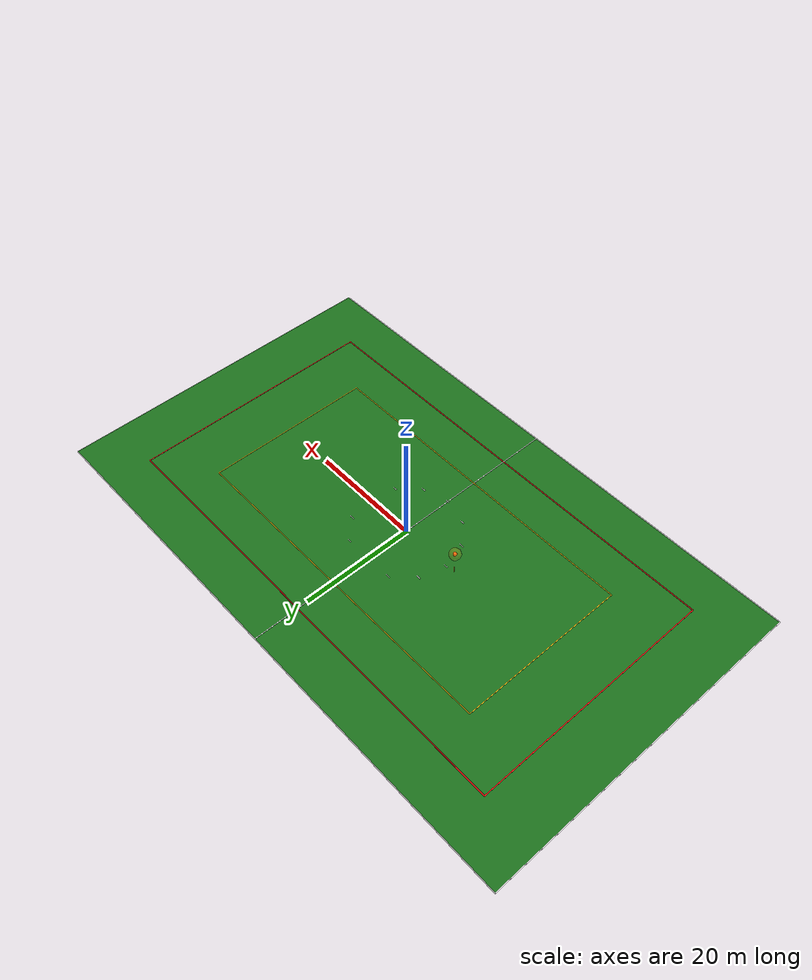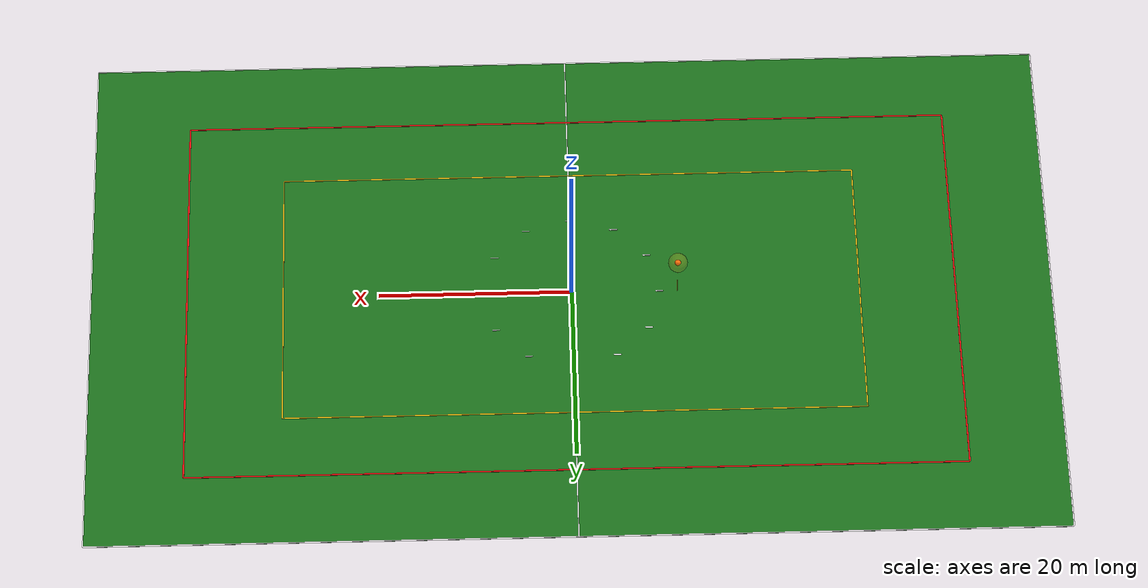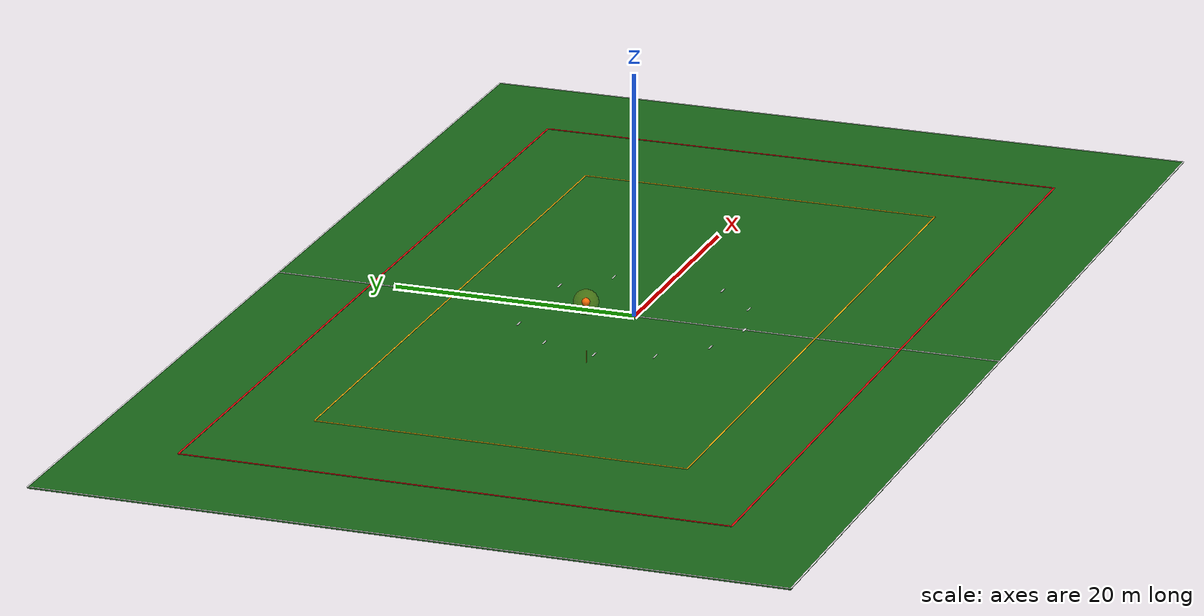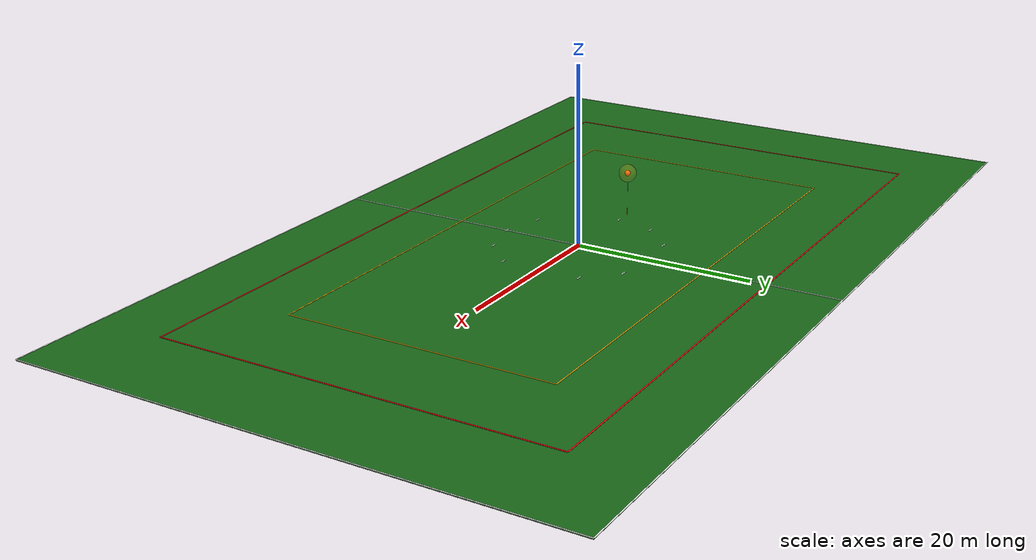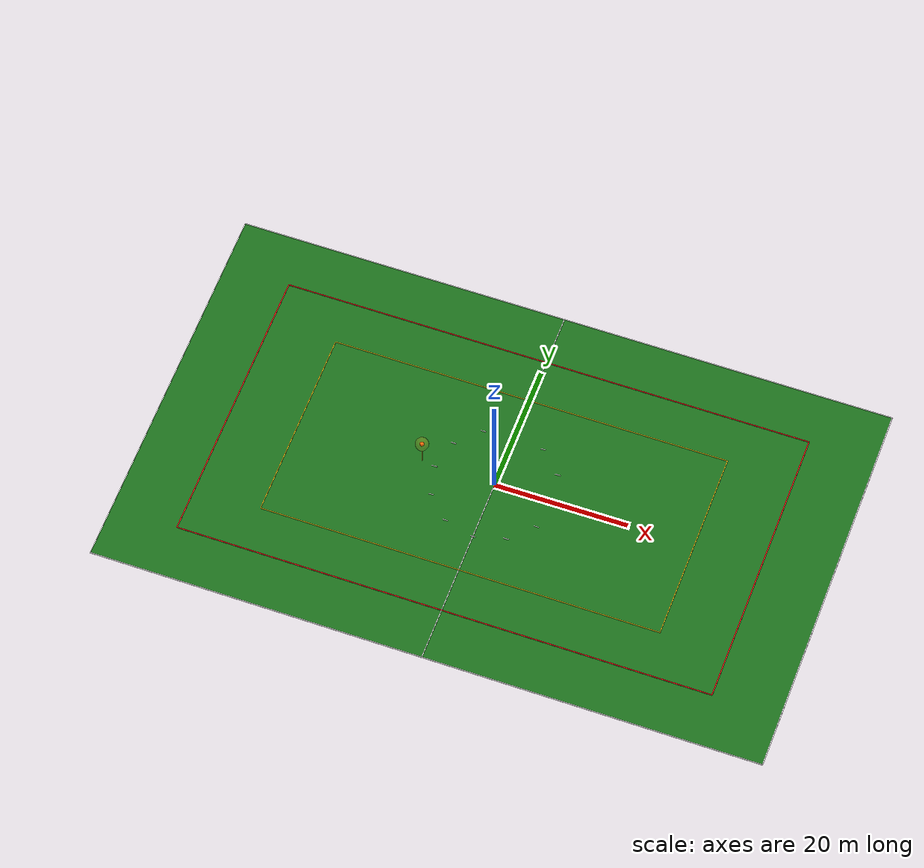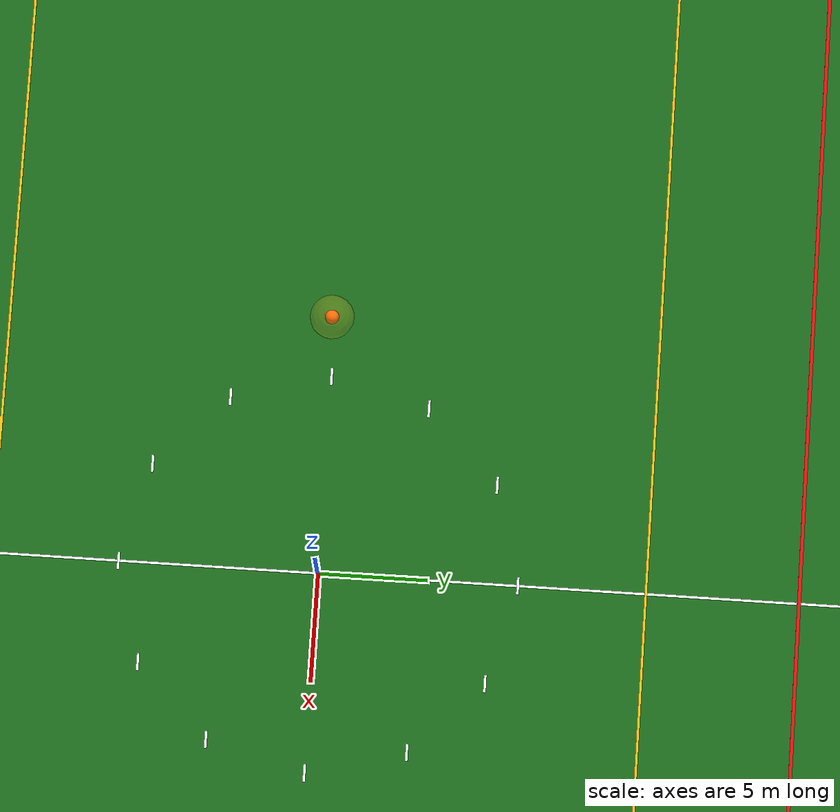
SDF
<?xml version="1.0" encoding="UTF-8"?>
<sdf version="1.9">
  <world name="football_field">
    <physics type="ode"><max_step_size>0.004</max_step_size><real_time_factor>1.0</real_time_factor><real_time_update_rate>250</real_time_update_rate></physics>
    <plugin name="gz::sim::systems::Physics" filename="gz-sim-physics-system"/>
    <plugin name="gz::sim::systems::UserCommands" filename="gz-sim-user-commands-system"/>
    <plugin name="gz::sim::systems::SceneBroadcaster" filename="gz-sim-scene-broadcaster-system"/>
    <plugin name="gz::sim::systems::Contact" filename="gz-sim-contact-system"/>
    <plugin name="gz::sim::systems::Imu" filename="gz-sim-imu-system"/>
    <plugin name="gz::sim::systems::AirPressure" filename="gz-sim-air-pressure-system"/>
    <plugin name="gz::sim::systems::ApplyLinkWrench" filename="gz-sim-apply-link-wrench-system"/>
    <plugin name="gz::sim::systems::NavSat" filename="gz-sim-navsat-system"/>
    <plugin name="gz::sim::systems::Sensors" filename="gz-sim-sensors-system"><render_engine>ogre2</render_engine></plugin>
    <gravity>0 0 -9.8</gravity>
    <magnetic_field>6e-06 2.3e-05 -4.2e-05</magnetic_field>
    <atmosphere type="adiabatic"/>
    <scene><grid>false</grid><ambient>0.5 0.5 0.5 1</ambient><background>0.72 0.82 0.92 1</background><shadows>true</shadows></scene>
    <gui fullscreen="false">
      <plugin filename="MinimalScene" name="3D View"><gz-gui><title>RAS hardware mirror</title><property type="bool" key="showTitleBar">false</property><property type="string" key="state">docked</property></gz-gui><engine>ogre2</engine><scene>scene</scene><ambient_light>0.5 0.5 0.5</ambient_light><background_color>0.72 0.82 0.92</background_color><camera_pose>-55 -48 44 0 0.55 0.7</camera_pose></plugin>
      <plugin name="World control" filename="WorldControl"><gz-gui><property type="bool" key="showTitleBar">0</property><property type="string" key="state">floating</property></gz-gui><play_pause>1</play_pause><step>1</step><start_paused>0</start_paused></plugin>
      <plugin name="World stats" filename="WorldStats"/>
      <plugin name="Entity tree" filename="EntityTree"/>
    </gui>
    <model name="grass_field">
      <static>true</static><link name="link">
        <collision name="collision"><geometry><box><size>100 60 0.1</size></box></geometry></collision>
        <visual name="grass"><geometry><box><size>100 60 0.1</size></box></geometry><material><ambient>0.08 0.30 0.08 1</ambient><diffuse>0.10 0.42 0.10 1</diffuse></material></visual>
      </link><pose>0 0 -0.05 0 0 0</pose>
    </model>
    <model name="field_boundary_south"><static>true</static><pose>0 -30 0.025 0 0 0</pose><link name="link"><visual name="visual"><geometry><box><size>100 0.12 0.03</size></box></geometry><material><ambient>1 1 1 1</ambient><diffuse>1 1 1 1</diffuse></material></visual></link></model>
    <model name="field_boundary_north"><static>true</static><pose>0 30 0.025 0 0 0</pose><link name="link"><visual name="visual"><geometry><box><size>100 0.12 0.03</size></box></geometry><material><ambient>1 1 1 1</ambient><diffuse>1 1 1 1</diffuse></material></visual></link></model>
    <model name="field_boundary_west"><static>true</static><pose>-50 0 0.025 0 0 0</pose><link name="link"><visual name="visual"><geometry><box><size>0.12 60 0.03</size></box></geometry><material><ambient>1 1 1 1</ambient><diffuse>1 1 1 1</diffuse></material></visual></link></model>
    <model name="field_boundary_east"><static>true</static><pose>50 0 0.025 0 0 0</pose><link name="link"><visual name="visual"><geometry><box><size>0.12 60 0.03</size></box></geometry><material><ambient>1 1 1 1</ambient><diffuse>1 1 1 1</diffuse></material></visual></link></model>
    <model name="center_line"><static>true</static><pose>0 0 0.025 0 0 0</pose><link name="link"><visual name="visual"><geometry><box><size>0.12 60 0.03</size></box></geometry><material><ambient>1 1 1 1</ambient><diffuse>1 1 1 1</diffuse></material></visual></link></model>
    <model name="center_circle_00"><static>true</static><pose>9.15 0 0.026 0 0 0</pose><link name="link"><visual name="visual"><geometry><box><size>0.8 0.12 0.03</size></box></geometry><material><ambient>1 1 1 1</ambient><diffuse>1 1 1 1</diffuse></material></visual></link></model>
    <model name="center_circle_01"><static>true</static><pose>7.92413 4.575 0.026 0 0 0</pose><link name="link"><visual name="visual"><geometry><box><size>0.8 0.12 0.03</size></box></geometry><material><ambient>1 1 1 1</ambient><diffuse>1 1 1 1</diffuse></material></visual></link></model>
    <model name="center_circle_02"><static>true</static><pose>4.575 7.92413 0.026 0 0 0</pose><link name="link"><visual name="visual"><geometry><box><size>0.8 0.12 0.03</size></box></geometry><material><ambient>1 1 1 1</ambient><diffuse>1 1 1 1</diffuse></material></visual></link></model>
    <model name="center_circle_03"><static>true</static><pose>5.60276e-16 9.15 0.026 0 0 0</pose><link name="link"><visual name="visual"><geometry><box><size>0.8 0.12 0.03</size></box></geometry><material><ambient>1 1 1 1</ambient><diffuse>1 1 1 1</diffuse></material></visual></link></model>
    <model name="center_circle_04"><static>true</static><pose>-4.575 7.92413 0.026 0 0 0</pose><link name="link"><visual name="visual"><geometry><box><size>0.8 0.12 0.03</size></box></geometry><material><ambient>1 1 1 1</ambient><diffuse>1 1 1 1</diffuse></material></visual></link></model>
    <model name="center_circle_05"><static>true</static><pose>-7.92413 4.575 0.026 0 0 0</pose><link name="link"><visual name="visual"><geometry><box><size>0.8 0.12 0.03</size></box></geometry><material><ambient>1 1 1 1</ambient><diffuse>1 1 1 1</diffuse></material></visual></link></model>
    <model name="center_circle_06"><static>true</static><pose>-9.15 1.12055e-15 0.026 0 0 0</pose><link name="link"><visual name="visual"><geometry><box><size>0.8 0.12 0.03</size></box></geometry><material><ambient>1 1 1 1</ambient><diffuse>1 1 1 1</diffuse></material></visual></link></model>
    <model name="center_circle_07"><static>true</static><pose>-7.92413 -4.575 0.026 0 0 0</pose><link name="link"><visual name="visual"><geometry><box><size>0.8 0.12 0.03</size></box></geometry><material><ambient>1 1 1 1</ambient><diffuse>1 1 1 1</diffuse></material></visual></link></model>
    <model name="center_circle_08"><static>true</static><pose>-4.575 -7.92413 0.026 0 0 0</pose><link name="link"><visual name="visual"><geometry><box><size>0.8 0.12 0.03</size></box></geometry><material><ambient>1 1 1 1</ambient><diffuse>1 1 1 1</diffuse></material></visual></link></model>
    <model name="center_circle_09"><static>true</static><pose>-1.68083e-15 -9.15 0.026 0 0 0</pose><link name="link"><visual name="visual"><geometry><box><size>0.8 0.12 0.03</size></box></geometry><material><ambient>1 1 1 1</ambient><diffuse>1 1 1 1</diffuse></material></visual></link></model>
    <model name="center_circle_10"><static>true</static><pose>4.575 -7.92413 0.026 0 0 0</pose><link name="link"><visual name="visual"><geometry><box><size>0.8 0.12 0.03</size></box></geometry><material><ambient>1 1 1 1</ambient><diffuse>1 1 1 1</diffuse></material></visual></link></model>
    <model name="center_circle_11"><static>true</static><pose>7.92413 -4.575 0.026 0 0 0</pose><link name="link"><visual name="visual"><geometry><box><size>0.8 0.12 0.03</size></box></geometry><material><ambient>1 1 1 1</ambient><diffuse>1 1 1 1</diffuse></material></visual></link></model>
    <model name="hard_geofence_south"><static>true</static><pose>0 -22 0.09 0 0 0</pose><link name="link"><visual name="visual"><geometry><box><size>80 0.16 0.03</size></box></geometry><material><ambient>0.9 0.05 0.05 1</ambient><diffuse>0.9 0.05 0.05 1</diffuse></material></visual></link></model>
    <model name="hard_geofence_north"><static>true</static><pose>0 22 0.09 0 0 0</pose><link name="link"><visual name="visual"><geometry><box><size>80 0.16 0.03</size></box></geometry><material><ambient>0.9 0.05 0.05 1</ambient><diffuse>0.9 0.05 0.05 1</diffuse></material></visual></link></model>
    <model name="hard_geofence_west"><static>true</static><pose>-40 0 0.09 0 0 0</pose><link name="link"><visual name="visual"><geometry><box><size>0.16 44 0.03</size></box></geometry><material><ambient>0.9 0.05 0.05 1</ambient><diffuse>0.9 0.05 0.05 1</diffuse></material></visual></link></model>
    <model name="hard_geofence_east"><static>true</static><pose>40 0 0.09 0 0 0</pose><link name="link"><visual name="visual"><geometry><box><size>0.16 44 0.03</size></box></geometry><material><ambient>0.9 0.05 0.05 1</ambient><diffuse>0.9 0.05 0.05 1</diffuse></material></visual></link></model>
    <model name="target_region_south"><static>true</static><pose>0 -15 0.07 0 0 0</pose><link name="link"><visual name="visual"><geometry><box><size>60 0.12 0.03</size></box></geometry><material><ambient>1 0.75 0.05 1</ambient><diffuse>1 0.75 0.05 1</diffuse></material></visual></link></model>
    <model name="target_region_north"><static>true</static><pose>0 15 0.07 0 0 0</pose><link name="link"><visual name="visual"><geometry><box><size>60 0.12 0.03</size></box></geometry><material><ambient>1 0.75 0.05 1</ambient><diffuse>1 0.75 0.05 1</diffuse></material></visual></link></model>
    <model name="target_region_west"><static>true</static><pose>-30 0 0.07 0 0 0</pose><link name="link"><visual name="visual"><geometry><box><size>0.12 30 0.03</size></box></geometry><material><ambient>1 0.75 0.05 1</ambient><diffuse>1 0.75 0.05 1</diffuse></material></visual></link></model>
    <model name="target_region_east"><static>true</static><pose>30 0 0.07 0 0 0</pose><link name="link"><visual name="visual"><geometry><box><size>0.12 30 0.03</size></box></geometry><material><ambient>1 0.75 0.05 1</ambient><diffuse>1 0.75 0.05 1</diffuse></material></visual></link></model>
    <include><uri>model://virtual_target_marker</uri><name>virtual_target_marker</name><pose>-11 0 5 0 0 0</pose></include>
    <light name="sun" type="directional"><pose>0 0 100 0 0 0</pose><cast_shadows>true</cast_shadows><direction>-0.3 0.2 -0.9</direction><diffuse>0.9 0.9 0.9 1</diffuse><specular>0.2 0.2 0.2 1</specular></light>
    <spherical_coordinates><surface_model>EARTH_WGS84</surface_model><world_frame_orientation>ENU</world_frame_orientation><latitude_deg>47.3979710577</latitude_deg><longitude_deg>8.5461637398</longitude_deg><elevation>0</elevation></spherical_coordinates>
  </world>
</sdf>

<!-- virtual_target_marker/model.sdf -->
<sdf version="1.9">
  <model name="virtual_target_marker">
    <static>true</static>
    <link name="visual_only">
      <visual name="target_sphere">
        <geometry><sphere><radius>0.32</radius></sphere></geometry>
        <material><ambient>1 0.35 0.02 1</ambient><diffuse>1 0.35 0.02 1</diffuse></material>
      </visual>
      <visual name="capture_sphere">
        <geometry><sphere><radius>1.0</radius></sphere></geometry>
        <transparency>0.78</transparency>
        <material><ambient>1 0.75 0.1 0.22</ambient><diffuse>1 0.75 0.1 0.22</diffuse></material>
      </visual>
      <visual name="vertical_reference">
        <pose>0 0 -2.5 0 0 0</pose>
        <geometry><cylinder><radius>0.025</radius><length>5.0</length></cylinder></geometry>
        <material><ambient>1 0.6 0.05 0.7</ambient><diffuse>1 0.6 0.05 0.7</diffuse></material>
      </visual>
    </link>
  </model>
</sdf>
